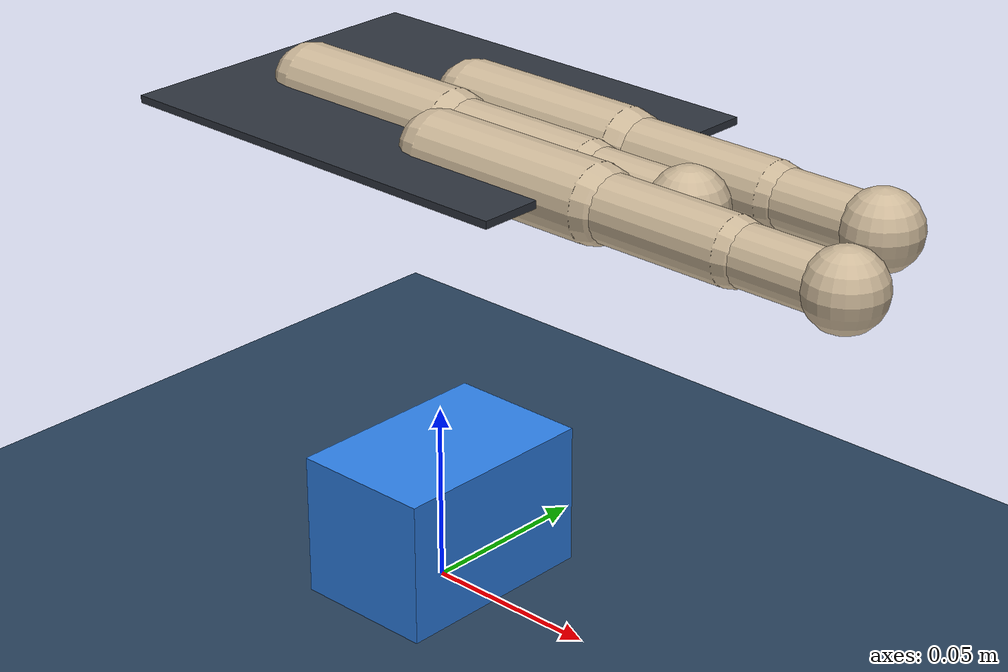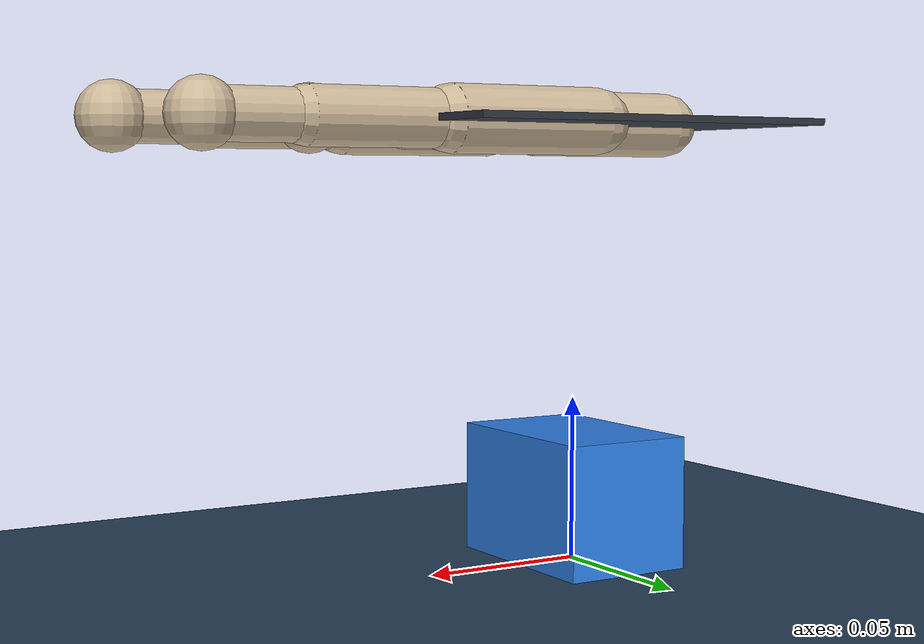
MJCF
<mujoco model="scene_prism2_tn0d0084p0d0222p0d0047_ip0d0013n0d0168p0d0052_mp0d0196p0d0115p0d0000">
  <compiler angle="radian" autolimits="true" />
  <option timestep="0.002" gravity="0 0 -9.81" integrator="implicitfast" />
  <visual>
    <headlight ambient=".4 .4 .4" diffuse=".8 .8 .8" specular="0.1 0.1 0.1" />
    <map znear=".01" />
    <quality shadowsize="2048" />
    <global elevation="-15" />
  </visual>
  <default>
    <geom friction="1.8 0.15 0.01" solref="0.006 1" solimp="0.97 0.995 0.0005" />
    <motor ctrlrange="-1 1" ctrllimited="true" />
    <default class="pose">
      <joint damping="2.0" armature="0.01" />
      <position kp="4000" kv="100" forcerange="-1000 1000" />
    </default>
    <default class="ctrl">
      <joint damping="0.5" armature="0.001" />
      <position kp="30" kv="0.5" gear="1" forcerange="-10 10" ctrlrange="-1 1" />
    </default>
  </default>
  <asset>
    <texture type="skybox" builtin="gradient" rgb1="0.3 0.5 0.7" rgb2="0 0 0" width="512" height="3072" />
    <texture type="2d" name="groundplane" builtin="checker" mark="edge" rgb1="0.2 0.3 0.4" rgb2="0.1 0.2 0.3" markrgb="0.8 0.8 0.8" width="300" height="300" />
    <material name="groundplane" texture="groundplane" texuniform="true" texrepeat="5 5" reflectance="0.2" />
    <texture name="grid" type="2d" builtin="checker" rgb1="0.15 0.15 0.15" rgb2="0.25 0.25 0.25" width="256" height="256" />
    <material name="table_mat" texture="grid" texrepeat="3 3" reflectance="0.2" />
    <material name="palm_mat" rgba="0.18 0.2 0.24 1" />
    <material name="finger_mat" rgba="0.8 0.72 0.6 1" />
    <material name="object_mat" rgba="0.18 0.5 0.9 1" />
  </asset>
  <worldbody>
    <light pos="0 0 1.5" dir="0 0 -1" directional="true" diffuse=".6 .6 .6" specular=".2 .2 .2" />
    <light pos="0.5 0.5 1.0" dir="-1 -1 -1" directional="true" diffuse=".4 .4 .4" specular=".1 .1 .1" />
    <geom name="floor" type="plane" size="1.5 1.5 0.1" material="groundplane" />
    <body name="cube" pos="0.000000 0.000000 0.020000">
      <freejoint />
      <geom type="box" size="0.020000 0.030000 0.020000" density="500" material="object_mat" friction="2.4 0.2 0.02" />
    </body>
    <body gravcomp="1" name="palm_pose" pos="0 0 0.134">
      <joint class="pose" name="palm_px" type="slide" axis="1 0 0" range="-0.20 0.20" />
      <joint class="pose" name="palm_py" type="slide" axis="0 1 0" range="-0.20 0.20" />
      <joint class="pose" name="palm_pz" type="slide" axis="0 0 1" range="-0.15 0.35" />
      <joint class="pose" name="palm_rx" type="hinge" axis="1 0 0" range="-1.57 1.57" />
      <joint class="pose" name="palm_ry" type="hinge" axis="0 1 0" range="-1.57 1.57" />
      <joint class="pose" name="palm_rz" type="hinge" axis="0 0 1" range="-3.14 3.14" />
      <geom type="box" size="0.06 0.045 0.001" material="palm_mat" />
      <body name="thumb_mount" pos="-0.038352 -0.005841 0">
        <inertial pos="0 0 0" mass="0.001" diaginertia="1e-6 1e-6 1e-6" />
        <body name="thumb_yaw_frame">
          <inertial pos="0 0 0" mass="0.001" diaginertia="1e-6 1e-6 1e-6" />
          <joint class="ctrl" name="thumb_yaw" type="hinge" axis="1 0 0" range="-1.1 1.1" />
          <body name="thumb_mcp_frame">
            <joint class="ctrl" name="thumb_mcp" type="hinge" axis="0 1 0" range="0 3.14" />
            <geom type="capsule" fromto="0 0 0 0.05 0 0" size="0.010" material="finger_mat" />
            <body name="thumb_len_frame" pos="0.054709 0 0">
              <geom type="capsule" fromto="0 0 0 0.04 0 0" size="0.0085" material="finger_mat" />
              <body name="thumb_pip_frame" pos="0.04 0 0">
                <joint class="ctrl" name="thumb_pip" type="hinge" axis="0 1 0" range="-1.2 0.5" />
                <geom type="capsule" fromto="0 0 0 0.03 0 0" size="0.0075" material="finger_mat" />
                <body name="thumb_tip" pos="0.03 0 0">
                  <geom type="sphere" size="0.010" material="finger_mat" friction="2.4 0.2 0.02" />
                  <geom type="sphere" pos="0 0.004 0" size="0.005" material="finger_mat" friction="2.4 0.2 0.02" />
                  <geom type="sphere" pos="0 -0.004 0" size="0.005" material="finger_mat" friction="2.4 0.2 0.02" />
                </body>
              </body>
            </body>
          </body>
        </body>
      </body>
      <body name="index_mount" pos="0.001277 0.013202 0">
        <inertial pos="0 0 0" mass="0.001" diaginertia="1e-6 1e-6 1e-6" />
        <body name="index_yaw_frame">
          <inertial pos="0 0 0" mass="0.001" diaginertia="1e-6 1e-6 1e-6" />
          <joint class="ctrl" name="index_yaw" type="hinge" axis="1 0 0" range="-1.1 1.1" />
          <body name="index_mcp_frame">
            <joint class="ctrl" name="index_mcp" type="hinge" axis="0 1 0" range="0 2.5" />
            <geom type="capsule" fromto="0 0 0 0.05 0 0" size="0.010" material="finger_mat" />
            <body name="index_len_frame" pos="0.055182 0 0">
              <geom type="capsule" fromto="0 0 0 0.04 0 0" size="0.0085" material="finger_mat" />
              <body name="index_pip_frame" pos="0.04 0 0">
                <joint class="ctrl" name="index_pip" type="hinge" axis="0 1 0" range="-1.2 1.57" />
                <geom type="capsule" fromto="0 0 0 0.03 0 0" size="0.0075" material="finger_mat" />
                <body name="index_tip" pos="0.03 0 0">
                  <geom type="sphere" size="0.010" material="finger_mat" friction="2.4 0.2 0.02" />
                  <geom type="sphere" pos="0 0.004 0" size="0.005" material="finger_mat" friction="2.4 0.2 0.02" />
                  <geom type="sphere" pos="0 -0.004 0" size="0.005" material="finger_mat" friction="2.4 0.2 0.02" />
                </body>
              </body>
            </body>
          </body>
        </body>
      </body>
      <body name="middle_mount" pos="0.019627 -0.018498 0">
        <inertial pos="0 0 0" mass="0.001" diaginertia="1e-6 1e-6 1e-6" />
        <body name="middle_yaw_frame">
          <inertial pos="0 0 0" mass="0.001" diaginertia="1e-6 1e-6 1e-6" />
          <joint class="ctrl" name="middle_yaw" type="hinge" axis="1 0 0" range="-1.1 1.1" />
          <body name="middle_mcp_frame">
            <joint class="ctrl" name="middle_mcp" type="hinge" axis="0 1 0" range="0 2.5" />
            <geom type="capsule" fromto="0 0 0 0.05 0 0" size="0.010" material="finger_mat" />
            <body name="middle_len_frame" pos="0.05 0 0">
              <geom type="capsule" fromto="0 0 0 0.04 0 0" size="0.0085" material="finger_mat" />
              <body name="middle_pip_frame" pos="0.04 0 0">
                <joint class="ctrl" name="middle_pip" type="hinge" axis="0 1 0" range="-1.2 1.57" />
                <geom type="capsule" fromto="0 0 0 0.03 0 0" size="0.0075" material="finger_mat" />
                <body name="middle_tip" pos="0.03 0 0">
                  <geom type="sphere" size="0.010" material="finger_mat" friction="2.4 0.2 0.02" />
                  <geom type="sphere" pos="0 0.004 0" size="0.005" material="finger_mat" friction="2.4 0.2 0.02" />
                  <geom type="sphere" pos="0 -0.004 0" size="0.005" material="finger_mat" friction="2.4 0.2 0.02" />
                </body>
              </body>
            </body>
          </body>
        </body>
      </body>
    </body>
  </worldbody>
  <actuator>
    <position class="pose" name="a_palm_px" joint="palm_px" ctrlrange="-0.20 0.20" />
    <position class="pose" name="a_palm_py" joint="palm_py" ctrlrange="-0.20 0.20" />
    <position class="pose" name="a_palm_pz" joint="palm_pz" ctrlrange="-0.15 0.35" />
    <position class="pose" name="a_palm_rx" joint="palm_rx" ctrlrange="-1.57 1.57" />
    <position class="pose" name="a_palm_ry" joint="palm_ry" ctrlrange="-1.57 1.57" />
    <position class="pose" name="a_palm_rz" joint="palm_rz" ctrlrange="-3.14 3.14" />
    <position class="ctrl" name="a_thumb_yaw" joint="thumb_yaw" ctrlrange="-1.1 1.1" />
    <position class="ctrl" name="a_thumb_mcp" joint="thumb_mcp" ctrlrange="0 3.14" />
    <position class="ctrl" name="a_thumb_pip" joint="thumb_pip" ctrlrange="-1.2 0.5" />
    <position class="ctrl" name="a_index_yaw" joint="index_yaw" ctrlrange="-1.1 1.1" />
    <position class="ctrl" name="a_index_mcp" joint="index_mcp" ctrlrange="0 2.5" />
    <position class="ctrl" name="a_index_pip" joint="index_pip" ctrlrange="-1.2 1.57" />
    <position class="ctrl" name="a_middle_yaw" joint="middle_yaw" ctrlrange="-1.1 1.1" />
    <position class="ctrl" name="a_middle_mcp" joint="middle_mcp" ctrlrange="0 2.5" />
    <position class="ctrl" name="a_middle_pip" joint="middle_pip" ctrlrange="-1.2 1.57" />
  </actuator>
  <keyframe>
    <key name="open" qpos="&#10;        0 0 0.02 1 0 0 0 0.02 0 0 0 0 0 0 2 -0.707 0 1.25 1 0 1.25 1&#10;      " ctrl="&#10;        0.02 0 0 0 0 0 0 2 -0.707 0 1.25 1 0 1.25 1&#10;      " />
    <key name="foundational" qpos="&#10;        0.001160431657 -0.007037692734 0.02094613302 0.9962180944 -0.001958321506 0.02769167685 0.08233373798 0.01992947541 0.0001134246817 -0.0002577618959 1.735474864e-05 5.483110853e-06 5.839819372e-06 -0.07077913109 1.849522245 -1.098365586 -0.09607745778 1.333539119 0.8963393564 -0.02492934189 1.421390884 0.9519299918&#10;      " ctrl="&#10;        0.02 0 0 0 0 0 -0.005529476116 1.281415796 -1.157051045 -0.1522977698 1.579522667 0.9476579007 -0.03774779371 1.515437265 0.9705674185&#10;      " />
  </keyframe>
</mujoco>
